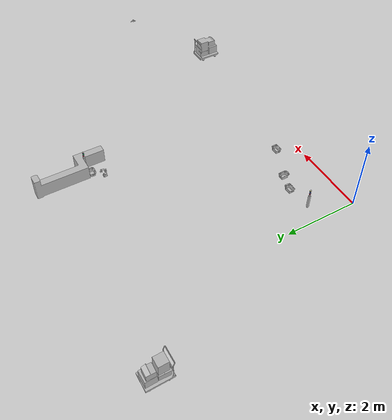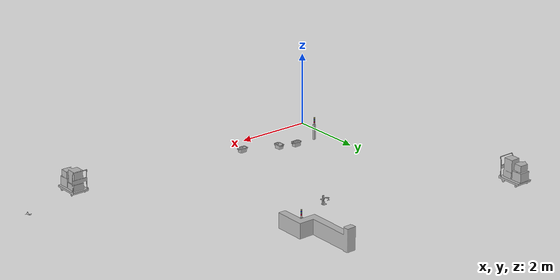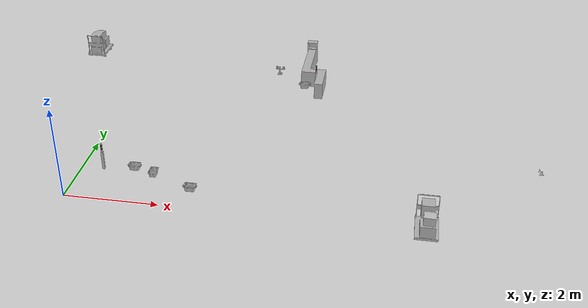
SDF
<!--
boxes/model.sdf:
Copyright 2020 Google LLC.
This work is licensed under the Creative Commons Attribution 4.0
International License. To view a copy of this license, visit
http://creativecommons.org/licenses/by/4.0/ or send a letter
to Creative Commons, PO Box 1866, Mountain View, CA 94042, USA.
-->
<sdf version="1.11">
 <world name="ariac">
  <scene><grid>false</grid><shadows>false</shadows></scene>
  <physics name="1ms" type="ignored">
   <max_step_size>0.001</max_step_size>
   <real_time_factor>1.0</real_time_factor>
  </physics>
  <plugin filename="gz-sim-physics-system" name="gz::sim::systems::Physics">
   <physics><real_time_update_rate>500</real_time_update_rate><iters>30</iters></physics>
  </plugin>
  <plugin filename="gz-sim-user-commands-system" name="gz::sim::systems::UserCommands"/>
  <plugin filename="gz-sim-scene-broadcaster-system" name="gz::sim::systems::SceneBroadcaster"/>
  <plugin filename="gz-sim-sensors-system" name="gz::sim::systems::Sensors">
   <render_engine>ogre2</render_engine>
  </plugin>
  <plugin filename="gz-sim-contact-system" name="gz::sim::systems::Contact"/>
  <plugin filename="gz-sim-particle-emitter-system" name="gz::sim::systems::ParticleEmitter"/>
  <light type="directional" name="sun">
   <pose>0 0 10 0 0 0</pose>
   <diffuse>0.8 0.8 0.8 1</diffuse>
   <specular>0.2 0.2 0.2 1</specular>
   <attenuation>
    <range>1000</range>
    <constant>0.9</constant>
    <linear>0.01</linear>
    <quadratic>0.001</quadratic>
   </attenuation>
   <direction>-0.5 0.1 -0.9</direction>
   <visualize>false</visualize>
  </light>
  <include>
   <name>inspection_bin</name>
   <pose>1.14 1.15 0.01 0 0 1.57</pose>
   <uri>model://bins/disposal_bin</uri>
  </include>
  <include>
   <name>inspection_conveyor_bin</name>
   <pose>1.6 1 0.01 0 0 0</pose>
   <uri>model://bins/disposal_bin</uri>
  </include>
  <include>
   <name>recycling_bin</name>
   <pose>2.5 0.6 0.01 0 0 1.57</pose>
   <uri>model://bins/recycling_bin</uri>
  </include>
  <include><name>tool_holder</name><pose>3.6 5.2 0.43 0 0 3.14</pose><uri>model://tool_holder</uri></include>
  <include><name>vg_2</name><pose>3.52 5.2675 0.59937 0 0 0</pose><uri>model://vacuum_tools/vg_2</uri></include>
  <include><name>vg_4</name><pose>3.68 5.2675 0.59937 0 0 0</pose><uri>model://vacuum_tools/vg_4</uri></include>
  <include>
   <name>assembly_conveyor_bin</name>
   <pose>4.2 5.355 0.01 0 0 1.57</pose>
   <uri>model://bins/disposal_bin</uri>
  </include>
  <include>
   <name>assembly_conveyor</name>
   <pose>4.6 4.85 0.001 0 0 1.57</pose>
   <uri>model://assembly_conveyor</uri>
  </include>
  <include>
   <name>inspection_status_light</name>
   <pose>0.475 1.075 0 0 0.0 0</pose>
   <uri>model://status_light</uri>
  </include>
  <include>
   <name>assembly_status_light</name>
   <pose>4.475 5.425 0 0 0.0 0</pose>
   <uri>model://status_light</uri>
  </include>
  <include><name>boxes</name><pose>9.5 1.54 0.55 0 0 -0.4</pose><uri>model://boxes</uri></include>
  <include><name>trolly_box_1</name><pose>-1.58 6.44 0 0 0 1.57</pose><uri>model://TrolleyBox1</uri></include>
  <include><name>trolly_box_2</name><pose>7.3 0.0 0 0 0 -1.57</pose><uri>model://TrolleyBox1</uri></include>
  <plugin filename="libCompetitionManagerPlugin.so" name="ariac_plugins::CompetitionManagerPlugin"/>
  <plugin filename="libCheatToolsPlugin.so" name="ariac_plugins::CheatToolsPlugin"/>
  <plugin filename="libShellInsertionPlugin.so" name="ariac_plugins::ShellInsertionPlugin"/>
 </world>
</sdf>

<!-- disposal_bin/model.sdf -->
<sdf version="1.11">
  <model name="disposal_bin">
    <static>true</static>
    <link name="bin_link">
      <collision name='collision'>
        <pose> 0 0 0.05 0 0 0 </pose>
        <geometry>
          <box>
            <size> 0.15 0.25 0.01 </size>
          </box>
        </geometry>
      </collision>

      <visual name="visual">
        <geometry>
          <mesh>
            <uri>model://bins/meshes/blue_bin.dae</uri>
            <scale> 0.25 0.35 0.25 </scale>
          </mesh>
        </geometry>
       </visual>

       <sensor name='collision_detector' type='contact'>
        <update_rate>30</update_rate>
          <contact>
            <collision>collision</collision>
          </contact>
      </sensor>

    </link>

    <plugin
      filename="libEntityDisposalPlugin.so"
      name="ariac_plugins::EntityDisposalPlugin">
      <contact_link>bin_link</contact_link>
    </plugin>

  </model>
</sdf>

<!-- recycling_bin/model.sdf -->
<sdf version="1.11">
  <model name="cell_recycling_bin">
    <static>true</static>
    <link name="bin_link">
      <collision name='collision'>
        <geometry>
          <mesh>
            <uri>model://bins/meshes/green_bin.dae</uri>
            <scale> 0.25 0.35 0.25 </scale>
          </mesh>
        </geometry>
      </collision>

      <visual name="visual">
        <geometry>
          <mesh>
            <uri>model://bins/meshes/green_bin.dae</uri>
            <scale> 0.25 0.35 0.25 </scale>
          </mesh>
        </geometry>
       </visual>

      <sensor name='collision_detector' type='contact'>
        <update_rate>30</update_rate>
          <contact>
            <collision>collision</collision>
          </contact>
      </sensor>

    </link>

    <plugin
      filename="libEntityDisposalPlugin.so"
      name="ariac_plugins::EntityDisposalPlugin">
      <contact_link>bin_link</contact_link>
    </plugin>

    <plugin
      filename="libTFPublisherPlugin.so"
      name="ariac_plugins::TFPublisherPlugin">
      <base_link>bin_link</base_link>
      <static>true</static>
    </plugin>

  </model>
</sdf>

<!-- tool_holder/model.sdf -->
<sdf version="1.6">
  <model name="tool_holder">
    <static>true</static>
    <link name="tool_holder_link">
      <inertial auto="true"/>

      <visual name="visual">
        <geometry>
          <mesh>
            <uri>model://tool_holder/meshes/tool_holder.gltf</uri>
          </mesh>
        </geometry>
      </visual>

      <collision name="collision">
        <density>2700</density>
        <geometry>
          <mesh>
            <uri>model://tool_holder/meshes/tool_holder.stl</uri>
          </mesh>
        </geometry>
      </collision>
    </link>

    <link name="vg_2_slot">
      <pose>0.08 -0.0675 0.16437 3.14 0 0</pose>
    </link>
    <link name="vg_4_slot">
      <pose>-0.08 -0.0675 0.16437 3.14 0 0</pose>
    </link>

    <joint name="base_to_vg_2_slot" type="fixed">
      <parent>tool_holder_link</parent>
      <child>vg_2_slot</child>
    </joint>
    <joint name="base_to_vg_4_slot" type="fixed">
      <parent>tool_holder_link</parent>
      <child>vg_4_slot</child>
    </joint>

    <plugin
      filename="libToolStandPlugin.so"
      name="ariac_plugins::ToolStandPlugin">
    </plugin>

    <plugin
      filename="libTFPublisherPlugin.so"
      name="ariac_plugins::TFPublisherPlugin">
      <base_link>tool_holder_link</base_link>
      <static>true</static>
      <child link="vg_2_slot" frame="vg_2"/>
      <child link="vg_4_slot" frame="vg_4"/>
    </plugin>
  </model>
</sdf>

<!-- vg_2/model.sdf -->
<sdf version="1.6">
  <model name="vg_2">
    <allow_auto_disable>true</allow_auto_disable>
    <link name="base_link">
      <inertial auto="true"/>

      <visual name="visual">
        <pose>0 0 -0.06 3.14 0 -1.57</pose>
        <geometry>
          <mesh>
            <uri>model://vacuum_tools/meshes/vg_2_visual.gltf</uri>
          </mesh>
        </geometry>
      </visual>

      <collision name="collision">
        <density>2700</density>
        <geometry>
          <mesh>
            <uri>model://vacuum_tools/meshes/vg_2_collision.stl</uri>
          </mesh>
        </geometry>
      </collision>

    </link>

    <link name="antistick_link1">
      <inertial auto="true"/>
      <pose> 0.025 0 -0.06305 0 0 0 </pose>
      <collision name="collision">
        <density>1</density>
        <geometry>
          <box>
            <size>0.01 0.01 0.001</size>
          </box>
        </geometry>
      </collision>
    </link>

    <link name="antistick_link2">
      <inertial auto="true"/>
      <pose> -0.025 0 -0.06305 0 0 0 </pose>
      <collision name="collision">
        <density>1</density>
        <geometry>
          <box>
            <size>0.01 0.01 0.001</size>
          </box>
        </geometry>
      </collision>
    </link>

    <joint name="antistick_joint1" type="fixed">
      <parent>base_link</parent>
      <child>antistick_link1</child>
    </joint>

    <joint name="antistick_joint2" type="fixed">
      <parent>base_link</parent>
      <child>antistick_link2</child>
    </joint>

    <link name="contact_link">
      <inertial auto="true"/>
      <pose> 0 0 -0.00505 0 0 0</pose>
      <collision name="collision">
        <density>1</density>
        <geometry>
          <cylinder>
            <radius>0.007</radius>
            <length>0.0001</length>
          </cylinder>
        </geometry>
      </collision>
    </link>

    <joint name="contact_joint" type="prismatic">
      <parent>base_link</parent>
      <child>contact_link</child>
      <axis>
        <xyz>0 0 1</xyz>
        <limit>
          <lower>-0.002</lower>
          <upper>0.0</upper>
          <effort>10</effort>
        </limit>
      </axis>
    </joint>

    <!-- Gripper sensors -->
    <link name="suction_1_link">
      <inertial auto="true"/>
      <pose> 0.025 0 -0.066 0 0 0 </pose>
      <collision name="collision">
        <density>1</density>
        <geometry>
          <cylinder>
            <radius>0.0085</radius>
            <length>0.002</length>
          </cylinder>
        </geometry>
      </collision>
      <sensor name='contact_sensor' type='contact'>
        <update_rate>500</update_rate>
        <contact>
          <collision>collision</collision>
        </contact>
        <plugin
          filename="libContactPlugin.so"
          name="ariac_plugins::ContactPlugin">
          <search_term>vg_2</search_term>
          <update_rate>500</update_rate>
        </plugin>
      </sensor>
    </link>

    <link name="suction_2_link">
      <inertial auto="true"/>
      <pose> -0.025 0 -0.066 0 0 0 </pose>
      <collision name="collision">
        <density>1</density>
        <geometry>
          <cylinder>
            <radius>0.0085</radius>
            <length>0.002</length>
          </cylinder>
        </geometry>
      </collision>
      <sensor name='contact_sensor' type='contact'>
        <update_rate>500</update_rate>
        <contact>
          <collision>collision</collision>
        </contact>
        <plugin
          filename="libContactPlugin.so"
          name="ariac_plugins::ContactPlugin">
          <search_term>vg_2</search_term>
          <update_rate>500</update_rate>
        </plugin>
      </sensor>
    </link>

    <joint name="suction_1_joint" type="prismatic">
      <parent>base_link</parent>
      <child>suction_1_link</child>
      <axis>
        <xyz>0 0 1</xyz>
        <limit>
          <lower>0</lower>
          <upper>0.004</upper>
          <effort>10</effort>
        </limit>
      </axis>
    </joint>

    <joint name="suction_2_joint" type="prismatic">
      <parent>base_link</parent>
      <child>suction_2_link</child>
      <axis>
        <xyz>0 0 1</xyz>
        <limit>
          <lower>0</lower>
          <upper>0.004</upper>
          <effort>10</effort>
        </limit>
      </axis>
    </joint>

    <plugin
      filename="libVacuumToolPlugin.so"
      name="ariac_plugins::VacuumToolPlugin">
      <ros>
        <namespace>/vacuum_tool/vg_2</namespace>
      </ros>
      <tool_type>1</tool_type>
    </plugin>
  </model>
</sdf>

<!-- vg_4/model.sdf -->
<sdf version="1.6">
  <model name="vg_4">
    <allow_auto_disable>true</allow_auto_disable>
    <link name="base_link">
      <inertial auto="true"/>

      <visual name="visual">
        <pose>0 0 -0.06 3.14 0 -1.57</pose>
        <geometry>
          <mesh>
            <uri>model://vacuum_tools/meshes/vg_4_visual.gltf</uri>
          </mesh>
        </geometry>
      </visual>

      <collision name="collision">
        <density>2700</density>
        <geometry>
          <mesh>
            <uri>model://vacuum_tools/meshes/vg_4_collision.stl</uri>
          </mesh>
        </geometry>
      </collision>

    </link>

    <link name="contact_link">
      <inertial auto="true"/>
      <pose> 0 0 -0.00505 0 0 0</pose>
      <collision name="collision">
        <density>1</density>
        <geometry>
          <cylinder>
            <radius>0.007</radius>
            <length>0.0001</length>
          </cylinder>
        </geometry>
      </collision>
    </link>

    <joint name="contact_joint" type="prismatic">
      <parent>base_link</parent>
      <child>contact_link</child>
      <axis>
        <xyz>0 0 1</xyz>
        <limit>
          <lower>-0.002</lower>
          <upper>0.0</upper>
          <effort>10</effort>
        </limit>
      </axis>
    </joint>

    <link name="suction_1_link">
      <inertial auto="true"/>
      <pose> 0.025 0.025 -0.066 0 0 0 </pose>
      <collision name="collision">
        <density>1</density>
        <geometry>
          <cylinder>
            <radius>0.0085</radius>
            <length>0.002</length>
          </cylinder>
        </geometry>
      </collision>
      <sensor name='contact_sensor' type='contact'>
        <update_rate>500</update_rate>
        <contact>
          <collision>collision</collision>
        </contact>
        <plugin
          filename="libContactPlugin.so"
          name="ariac_plugins::ContactPlugin">
          <search_term>vg_4</search_term>
          <update_rate>500</update_rate>
        </plugin>
      </sensor>
    </link>

    <link name="suction_2_link">
      <inertial auto="true"/>
      <pose> -0.025 0.025 -0.066 0 0 0 </pose>
      <collision name="collision">
        <density>1</density>
        <geometry>
          <cylinder>
            <radius>0.0085</radius>
            <length>0.002</length>
          </cylinder>
        </geometry>
      </collision>
      <sensor name='contact_sensor' type='contact'>
        <update_rate>500</update_rate>
        <contact>
          <collision>collision</collision>
        </contact>
        <plugin
          filename="libContactPlugin.so"
          name="ariac_plugins::ContactPlugin">
          <search_term>vg_4</search_term>
          <update_rate>500</update_rate>
        </plugin>
      </sensor>
    </link>

    <link name="suction_3_link">
      <inertial auto="true"/>
      <pose> 0.025 -0.025 -0.066 0 0 0 </pose>
      <collision name="collision">
        <density>1</density>
        <geometry>
          <cylinder>
            <radius>0.0085</radius>
            <length>0.002</length>
          </cylinder>
        </geometry>
      </collision>
      <sensor name='contact_sensor' type='contact'>
        <update_rate>500</update_rate>
        <contact>
          <collision>collision</collision>
        </contact>
        <plugin
          filename="libContactPlugin.so"
          name="ariac_plugins::ContactPlugin">
          <search_term>vg_4</search_term>
          <update_rate>500</update_rate>
        </plugin>
      </sensor>
    </link>

    <link name="suction_4_link">
      <inertial auto="true"/>
      <pose> -0.025 -0.025 -0.066 0 0 0 </pose>
      <collision name="collision">
        <density>1</density>
        <geometry>
          <cylinder>
            <radius>0.0085</radius>
            <length>0.002</length>
          </cylinder>
        </geometry>
      </collision>
      <sensor name='contact_sensor' type='contact'>
        <update_rate>500</update_rate>
        <contact>
          <collision>collision</collision>
        </contact>
        <plugin
          filename="libContactPlugin.so"
          name="ariac_plugins::ContactPlugin">
          <search_term>vg_4</search_term>
          <update_rate>500</update_rate>
        </plugin>
      </sensor>
    </link>

    <joint name="suction_1_joint" type="prismatic">
      <parent>base_link</parent>
      <child>suction_1_link</child>
      <axis>
        <xyz>0 0 1</xyz>
        <limit>
          <lower>0</lower>
          <upper>0.004</upper>
          <effort>10</effort>
        </limit>
      </axis>
    </joint>

    <joint name="suction_2_joint" type="prismatic">
      <parent>base_link</parent>
      <child>suction_2_link</child>
      <axis>
        <xyz>0 0 1</xyz>
        <limit>
          <lower>0</lower>
          <upper>0.004</upper>
          <effort>10</effort>
        </limit>
      </axis>
    </joint>

    <joint name="suction_3_joint" type="prismatic">
      <parent>base_link</parent>
      <child>suction_3_link</child>
      <axis>
        <xyz>0 0 1</xyz>
        <limit>
          <lower>0</lower>
          <upper>0.004</upper>
          <effort>10</effort>
        </limit>
      </axis>
    </joint>

    <joint name="suction_4_joint" type="prismatic">
      <parent>base_link</parent>
      <child>suction_4_link</child>
      <axis>
        <xyz>0 0 1</xyz>
        <limit>
          <lower>0</lower>
          <upper>0.004</upper>
          <effort>10</effort>
        </limit>
      </axis>
    </joint>

    <plugin
      filename="libVacuumToolPlugin.so"
      name="ariac_plugins::VacuumToolPlugin">
      <ros>
        <namespace>/vacuum_tool/vg_4</namespace>
      </ros>
      <tool_type>2</tool_type>
    </plugin>
  </model>
</sdf>

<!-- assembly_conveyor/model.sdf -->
<sdf version="1.11">
  <model name="assembly_conveyor">
    <link name="base">

      <visual name="base_visual">
        <geometry>
          <mesh>
            <uri>model://assembly_conveyor/meshes/assembly_conveyor.gltf</uri>
          </mesh>
        </geometry>
      </visual>

      <collision name="base_collision">
        <density>2700</density>
        <geometry>
          <mesh>
            <uri>model://assembly_conveyor/meshes/base.stl</uri>
          </mesh>
        </geometry>
      </collision>

      <inertial auto="true"/>
    </link>

    <link name="section_1_belt">
      <collision name="section_1_belt">
        <pose>0.34075 0 0.4245 0 0 0</pose>
        <geometry>
          <box>
            <size>0.6815 0.2 0.001</size>
          </box>
        </geometry>
      </collision>

      <sensor name='contact_detector' type='contact'>
        <update_rate>30</update_rate>
          <contact>
            <collision>section_1_belt</collision>
          </contact>
      </sensor>
    </link>

    <link name="section_2_belt">
      <collision name="section_2_belt">
        <pose>0.7 0.1 0.4225 0 0 1.57</pose>
        <geometry>
          <box>
            <size>0.4 0.2 0.001</size>
          </box>
        </geometry>
      </collision>
    </link>

    <link name="section_3_belt">
      <collision name="section_3_belt">
        <pose>1.2525 0.4 0.4205 0 0 0</pose>
        <geometry>
          <box>
            <size>1.305 0.2 0.001</size>
          </box>
        </geometry>
      </collision>
    </link>

    <link name="module_submission_link">
      <collision name="module_submission">
        <pose>1.955 0.4 0.42 0 0 0</pose>
        <geometry>
          <box>
            <size>0.1 0.1 0.001</size>
          </box>
        </geometry>
      </collision>
    </link>

    <joint name="module_submission_joint" type="fixed">
      <parent>base</parent>
      <child>module_submission_link</child>
    </joint>

    <joint name="belt_1_joint" type="prismatic">
      <parent>base</parent>
      <child>section_1_belt</child>
      <axis>
        <xyz>1 0 0</xyz>
        <limit>
          <lower>-0.01</lower>
          <upper>0.01</upper>
          <effort>100</effort>
        </limit>
      </axis>
    </joint>

    <joint name="belt_2_joint" type="prismatic">
      <parent>base</parent>
      <child>section_2_belt</child>
      <axis>
        <xyz>0 1 0</xyz>
        <limit>
          <lower>-0.15</lower>
          <upper>0.15</upper>
          <effort>100</effort>
        </limit>
      </axis>
    </joint>

    <joint name="belt_3_joint" type="prismatic">
      <parent>base</parent>
      <child>section_3_belt</child>
      <axis>
        <xyz>1 0 0</xyz>
        <limit>
          <lower>-0.01</lower>
          <upper>0.01</upper>
          <effort>100</effort>
        </limit>
      </axis>
    </joint>

    <link name="bottom_shell_insertion_link">
      <pose> 0.15 0.0 0.43 0 0 0 </pose>
    </link>

    <joint name="bottom_shell_insertion_joint" type="fixed">
      <parent>base</parent>
      <child>bottom_shell_insertion_link</child>
    </joint>

    <plugin
      filename="libLinearConveyorPlugin.so"
      name="ariac_plugins::LinearConveyorPlugin">
      <ros>
        <namespace>assembly_conveyor/section_1</namespace>
      </ros>
      <joint_name>belt_1_joint</joint_name>
      <max_speed>0.1</max_speed>
    </plugin>

    <plugin
      filename="libLinearConveyorPlugin.so"
      name="ariac_plugins::LinearConveyorPlugin">
      <ros>
        <namespace>assembly_conveyor/section_2</namespace>
      </ros>
      <joint_name>belt_2_joint</joint_name>
      <max_speed>0.1</max_speed>
    </plugin>

    <plugin
      filename="libLinearConveyorPlugin.so"
      name="ariac_plugins::LinearConveyorPlugin">
      <ros>
        <namespace>assembly_conveyor/section_3</namespace>
      </ros>
      <bidirectional>true</bidirectional>
      <joint_name>belt_3_joint</joint_name>
      <max_speed>0.3</max_speed>
    </plugin>

    <plugin
      filename="libTFPublisherPlugin.so"
      name="ariac_plugins::TFPublisherPlugin">
      <base_link>base</base_link>
      <static>true</static>
      <child link="bottom_shell_insertion_link" frame="bottom_shell_insertion_frame"/>
    </plugin>

    <joint name="assembly_conveyor_to_world" type="fixed">
      <parent>world</parent>
      <child>base</child>
    </joint>

  </model>

</sdf>

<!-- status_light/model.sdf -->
<sdf version="1.11">
  <model name="status_light">

    <static>true</static>

    <link name="base_link">

      <visual name="base_visual">
        <pose>0 0 0.2105 0 0 0</pose>
        <geometry>
          <box>
            <size>0.05 0.05 0.421</size>
          </box>
        </geometry>
        <material>
          <diffuse>0.753 0.753 0.753 1.0</diffuse>
        </material>
      </visual>

      <visual name="base_cylinder">
        <pose>0 0 0.446 0 0 0</pose>
        <geometry>
          <cylinder>
            <radius>0.02</radius>
            <length>0.05</length>
          </cylinder>
        </geometry>
        <material>
          <diffuse>0.753 0.753 0.753 1.0</diffuse>
        </material>
      </visual>

      <visual name="red_light_visual">
        <pose>0 0 0.481 0 0 0</pose>
        <geometry>
          <cylinder>
            <radius>0.02</radius>
            <length>0.02</length>
          </cylinder>
        </geometry>
        <material>
          <diffuse>1.0 0.0 0.0 0.9</diffuse>
        </material>
      </visual>

      <visual name="divider_1">
        <pose>0 0 0.496 0 0 0</pose>
        <geometry>
          <cylinder>
            <radius>0.02</radius>
            <length>0.01</length>
          </cylinder>
        </geometry>
        <material>
          <diffuse>0.753 0.753 0.753 1.0</diffuse>
        </material>
      </visual>

      <visual name="purple_light_visual">
        <pose>0 0 0.511 0 0 0</pose>
        <geometry>
          <cylinder>
            <radius>0.02</radius>
            <length>0.02</length>
          </cylinder>
        </geometry>
        <material>
          <diffuse>0.58 0.0 0.827 0.9</diffuse>
        </material>
      </visual>

      <visual name="divider_2">
        <pose>0 0 0.526 0 0 0</pose>
        <geometry>
          <cylinder>
            <radius>0.02</radius>
            <length>0.01</length>
          </cylinder>
        </geometry>
        <material>
          <diffuse>0.753 0.753 0.753 1.0</diffuse>
        </material>
      </visual>

      <visual name="green_light_visual">
        <pose>0 0 0.541 0 0 0</pose>
        <geometry>
          <cylinder>
            <radius>0.02</radius>
            <length>0.02</length>
          </cylinder>
        </geometry>
        <material>
          <diffuse>0.0 1.0 0.0 0.9</diffuse>
        </material>
      </visual>

      <visual name="divider_3">
        <pose>0 0 0.556 0 0 0</pose>
        <geometry>
          <cylinder>
            <radius>0.02</radius>
            <length>0.01</length>
          </cylinder>
        </geometry>
        <material>
          <diffuse>0.753 0.753 0.753 1.0</diffuse>
        </material>
      </visual>

      <visual name="blue_light_visual">
        <pose>0 0 0.571 0 0 0</pose>
        <geometry>
          <cylinder>
            <radius>0.02</radius>
            <length>0.02</length>
          </cylinder>
        </geometry>
        <material>
          <diffuse>0.0 0.0 1.0 0.9</diffuse>
        </material>
      </visual>

      <visual name="divider_4">
        <pose>0 0 0.586 0 0 0</pose>
        <geometry>
          <cylinder>
            <radius>0.02</radius>
            <length>0.01</length>
          </cylinder>
        </geometry>
        <material>
          <diffuse>0.753 0.753 0.753 1.0</diffuse>
        </material>
      </visual>

      <visual name="yellow_light_visual">
        <pose>0 0 0.601 0 0 0</pose>
        <geometry>
          <cylinder>
            <radius>0.02</radius>
            <length>0.02</length>
          </cylinder>
        </geometry>
        <material>
          <diffuse>0.8 0.8 0.0 0.9</diffuse>
          <emissive>0.8 0.8 0.0 1</emissive>
        </material>
      </visual>

      <visual name="cap">
        <pose>0 0 0.616 0 0 0</pose>
        <geometry>
          <cylinder>
            <radius>0.02</radius>
            <length>0.01</length>
          </cylinder>
        </geometry>
        <material>
          <diffuse>0.753 0.753 0.753 1.0</diffuse>
        </material>
      </visual>

    </link>

    <plugin
      filename="libStatusLightPlugin.so"
      name="ariac_plugins::StatusLightPlugin"/>

  </model>

</sdf>

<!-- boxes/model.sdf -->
<sdf version="1.6">
  <model name="boxes">
    <static>true</static>
    <link name="link_0">
      <visual name="visual">
        <geometry>
          <mesh>
            <uri>meshes/model.obj</uri>
          </mesh>
        </geometry>
      </visual>
    </link>
  </model>
</sdf>

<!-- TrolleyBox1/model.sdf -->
<sdf version="1.6">
  <model name="TrolleyBox1">
   <static>true</static>
    <link name="body">
      <pose>0 0 0 0 0 0</pose>

      <visual name="visual">
        <geometry>
          <mesh>
            <scale>0.75 0.75 0.75</scale>
            <uri>model://TrolleyBox1/meshes/TrolleyBox1.obj</uri>
          </mesh>
        </geometry>
      </visual>

      <collision name="collision">
        <geometry>
          <mesh>
            <scale>0.75 0.75 0.75</scale>
            <uri>model://TrolleyBox1/meshes/TrolleyBox1_Col.obj</uri>
          </mesh>
        </geometry>
      </collision>

    </link>
  </model>
</sdf>
